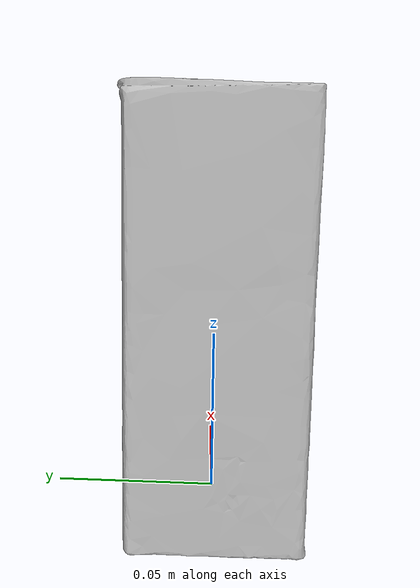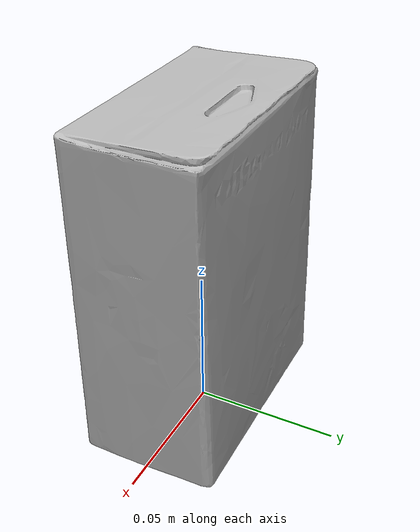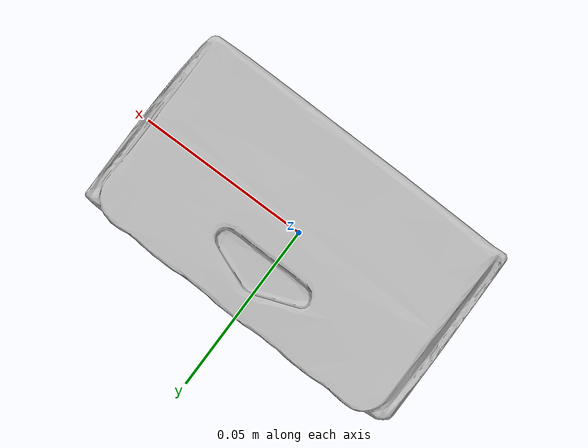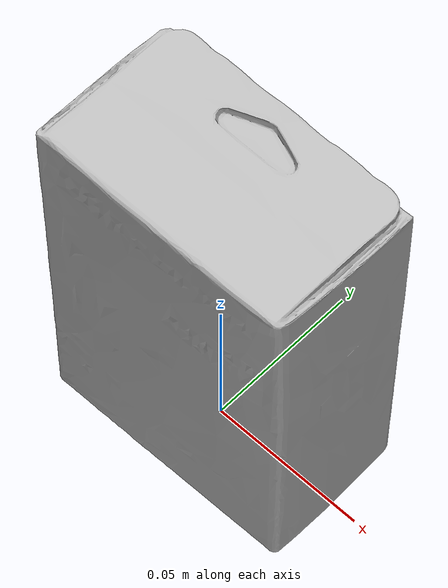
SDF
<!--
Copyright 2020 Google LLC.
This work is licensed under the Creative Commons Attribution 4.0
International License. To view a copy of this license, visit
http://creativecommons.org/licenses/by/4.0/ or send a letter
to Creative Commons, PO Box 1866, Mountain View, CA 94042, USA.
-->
<?xml version="1.0" ?>
<sdf version="1.6">
  <model name="Office_Depot_Canon_CLI_8Y_Ink_Cartridge_Yellow_0623B002">
    <link name="link_0">
      <visual name="visual">
        <geometry>
          <mesh>
            <uri>meshes/model.obj</uri>
          </mesh>
        </geometry>
      </visual>
      <collision name="collision_0">
        <geometry>
          <mesh>
            <uri>meshes/model.obj</uri>
          </mesh>
        </geometry>
      </collision>
    </link>
  </model>
</sdf>
